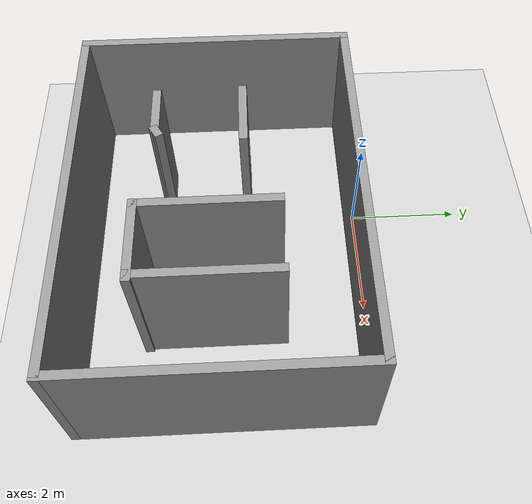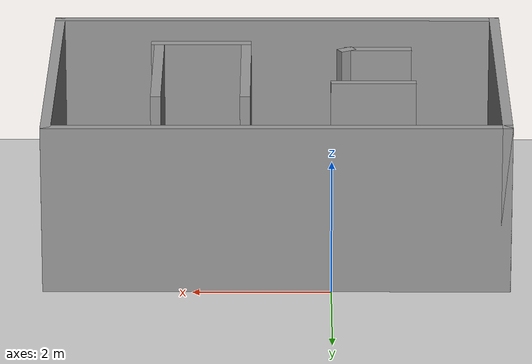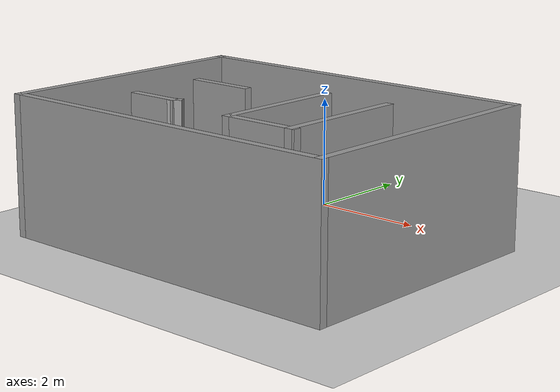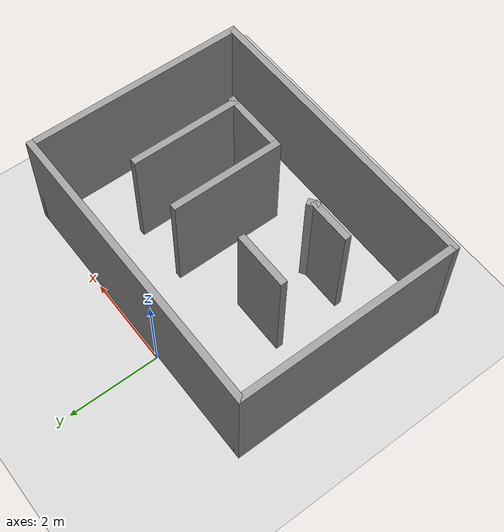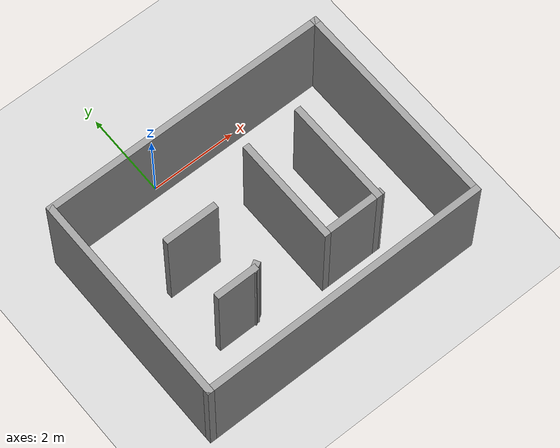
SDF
<sdf version="1.7">
 <world name="default">
  <light name="sun" type="directional">
   <pose>0 0 10 0 -0 0</pose>
   <diffuse>0.8 0.8 0.8 1</diffuse>
   <specular>0.2 0.2 0.2 1</specular>
   <attenuation>
    <range>1000</range>
    <constant>0.9</constant>
    <linear>0.01</linear>
    <quadratic>0.001</quadratic>
   </attenuation>
   <direction>-0.5 0.1 -0.9</direction>
   <spot><inner_angle>0</inner_angle><outer_angle>0</outer_angle><falloff>0</falloff></spot>
  </light>
  <model name="ground_plane">
   <static>1</static>
   <link name="link">
    <collision name="collision">
     <geometry><plane><normal>0 0 1</normal><size>100 100</size></plane></geometry>
     <surface><friction><ode><mu>100</mu><mu2>50</mu2></ode></friction></surface>
    </collision>
    <visual name="visual">
     <cast_shadows>0</cast_shadows>
     <geometry><plane><normal>0 0 1</normal><size>100 100</size></plane></geometry>
     <material>
      <script><uri>file://media/materials/scripts/gazebo.material</uri><name>Gazebo/Grey</name></script>
     </material>
    </visual>
   </link>
  </model>
  <gravity>0 0 -9.8</gravity>
  <magnetic_field>6e-06 2.3e-05 -4.2e-05</magnetic_field>
  <atmosphere type="adiabatic"/>
  <physics type="ode">
   <max_step_size>0.001</max_step_size>
   <real_time_factor>1</real_time_factor>
   <real_time_update_rate>1000</real_time_update_rate>
  </physics>
  <scene><ambient>0.4 0.4 0.4 1</ambient><background>0.7 0.7 0.7 1</background><shadows>1</shadows></scene>
  <audio><device>default</device></audio>
  <spherical_coordinates>
   <surface_model>EARTH_WGS84</surface_model>
   <latitude_deg>0</latitude_deg>
   <longitude_deg>0</longitude_deg>
   <elevation>0</elevation>
   <heading_deg>0</heading_deg>
  </spherical_coordinates>
  <model name="Simple_Shop_Layout">
   <pose>0.790706 -2.52883 0 0 -0 0</pose>
   <link name="Wall_0">
    <collision name="Wall_0_Collision">
     <geometry><box><size>5 0.15 2.5</size></box></geometry>
     <pose>0 0 1.25 0 -0 0</pose>
    </collision>
    <visual name="Wall_0_Visual">
     <pose>0 0 1.25 0 -0 0</pose>
     <geometry><box><size>5 0.15 2.5</size></box></geometry>
     <material>
      <script><uri>file://media/materials/scripts/gazebo.material</uri><name>Gazebo/Grey</name></script>
      <ambient>1 1 1 1</ambient>
     </material>
     <meta><layer>0</layer></meta>
    </visual>
    <pose>-3.3 0 0 0 -0 1.5708</pose>
   </link>
   <link name="Wall_1">
    <collision name="Wall_1_Collision">
     <geometry><box><size>6.75 0.15 2.5</size></box></geometry>
     <pose>0 0 1.25 0 -0 0</pose>
    </collision>
    <visual name="Wall_1_Visual">
     <pose>0 0 1.25 0 -0 0</pose>
     <geometry><box><size>6.75 0.15 2.5</size></box></geometry>
     <material>
      <script><uri>file://media/materials/scripts/gazebo.material</uri><name>Gazebo/Grey</name></script>
      <ambient>1 1 1 1</ambient>
     </material>
     <meta><layer>0</layer></meta>
    </visual>
    <pose>-0 2.425 0 0 -0 0</pose>
   </link>
   <link name="Wall_11">
    <collision name="Wall_11_Collision">
     <geometry><box><size>1.25 0.15 2.5</size></box></geometry>
     <pose>0 0 1.25 0 -0 0</pose>
    </collision>
    <visual name="Wall_11_Visual">
     <pose>0 0 1.25 0 -0 0</pose>
     <geometry><box><size>1.25 0.15 2.5</size></box></geometry>
     <material>
      <script><uri>file://media/materials/scripts/gazebo.material</uri><name>Gazebo/Grey</name></script>
      <ambient>1 1 1 1</ambient>
     </material>
     <meta><layer>0</layer></meta>
    </visual>
    <pose>-1.41734 0.483396 0 0 -0 0</pose>
   </link>
   <link name="Wall_13">
    <collision name="Wall_13_Collision">
     <geometry><box><size>1 0.15 2.5</size></box></geometry>
     <pose>0 0 1.25 0 -0 0</pose>
    </collision>
    <visual name="Wall_13_Visual">
     <pose>0 0 1.25 0 -0 0</pose>
     <geometry><box><size>1 0.15 2.5</size></box></geometry>
     <material>
      <script><uri>file://media/materials/scripts/gazebo.material</uri><name>Gazebo/Grey</name></script>
      <ambient>1 1 1 1</ambient>
     </material>
     <meta><layer>0</layer></meta>
    </visual>
    <pose>-1.50716 -1.02929 0 0 -0 0</pose>
   </link>
   <link name="Wall_14">
    <collision name="Wall_14_Collision">
     <geometry><box><size>0.25 0.15 2.5</size></box></geometry>
     <pose>0 0 1.25 0 -0 0</pose>
    </collision>
    <visual name="Wall_14_Visual">
     <pose>0 0 1.25 0 -0 0</pose>
     <geometry><box><size>0.25 0.15 2.5</size></box></geometry>
     <material>
      <script><uri>file://media/materials/scripts/gazebo.material</uri><name>Gazebo/Grey</name></script>
      <ambient>1 1 1 1</ambient>
     </material>
     <meta><layer>0</layer></meta>
    </visual>
    <pose>-1.03886 -1.00429 0 0 -0 0.523599</pose>
   </link>
   <link name="Wall_2">
    <collision name="Wall_2_Collision">
     <geometry><box><size>5 0.15 2.5</size></box></geometry>
     <pose>0 0 1.25 0 -0 0</pose>
    </collision>
    <visual name="Wall_2_Visual">
     <pose>0 0 1.25 0 -0 0</pose>
     <geometry><box><size>5 0.15 2.5</size></box></geometry>
     <material>
      <script><uri>file://media/materials/scripts/gazebo.material</uri><name>Gazebo/Grey</name></script>
      <ambient>1 1 1 1</ambient>
     </material>
     <meta><layer>0</layer></meta>
    </visual>
    <pose>3.3 0 0 0 -0 -1.5708</pose>
   </link>
   <link name="Wall_3">
    <collision name="Wall_3_Collision">
     <geometry><box><size>6.75 0.15 2.5</size></box></geometry>
     <pose>0 0 1.25 0 -0 0</pose>
    </collision>
    <visual name="Wall_3_Visual">
     <pose>0 0 1.25 0 -0 0</pose>
     <geometry><box><size>6.75 0.15 2.5</size></box></geometry>
     <material>
      <script><uri>file://media/materials/scripts/gazebo.material</uri><name>Gazebo/Grey</name></script>
      <ambient>1 1 1 1</ambient>
     </material>
     <meta><layer>0</layer></meta>
    </visual>
    <pose>-0 -2.425 0 0 -0 3.14159</pose>
   </link>
   <link name="Wall_6">
    <collision name="Wall_6_Collision">
     <geometry><box><size>2.5 0.15 2.5</size></box></geometry>
     <pose>0 0 1.25 0 -0 0</pose>
    </collision>
    <visual name="Wall_6_Visual">
     <pose>0 0 1.25 0 -0 0</pose>
     <geometry><box><size>2.5 0.15 2.5</size></box></geometry>
     <material>
      <script><uri>file://media/materials/scripts/gazebo.material</uri><name>Gazebo/Grey</name></script>
      <ambient>1 1 1 1</ambient>
     </material>
     <meta><layer>0</layer></meta>
    </visual>
    <pose>1.76161 -0.128743 0 0 -0 -1.5708</pose>
   </link>
   <link name="Wall_8">
    <collision name="Wall_8_Collision">
     <geometry><box><size>2.5 0.15 2.5</size></box></geometry>
     <pose>0 0 1.25 0 -0 0</pose>
    </collision>
    <visual name="Wall_8_Visual">
     <pose>0 0 1.25 0 -0 0</pose>
     <geometry><box><size>2.5 0.15 2.5</size></box></geometry>
     <material>
      <script><uri>file://media/materials/scripts/gazebo.material</uri><name>Gazebo/Grey</name></script>
      <ambient>1 1 1 1</ambient>
     </material>
     <meta><layer>0</layer></meta>
    </visual>
    <pose>0.46 -0.128743 0 0 -0 -1.5708</pose>
   </link>
   <link name="Wall_9">
    <collision name="Wall_9_Collision">
     <geometry><box><size>1.5 0.15 2.5</size></box></geometry>
     <pose>0 0 1.25 0 -0 0</pose>
    </collision>
    <visual name="Wall_9_Visual">
     <pose>0 0 1.25 0 -0 0</pose>
     <geometry><box><size>1.5 0.15 2.5</size></box></geometry>
     <material>
      <script><uri>file://media/materials/scripts/gazebo.material</uri><name>Gazebo/Grey</name></script>
      <ambient>1 1 1 1</ambient>
     </material>
     <meta><layer>0</layer></meta>
    </visual>
    <pose>1.135 -1.30374 0 0 -0 0</pose>
   </link>
   <static>1</static>
  </model>
 </world>
</sdf>
